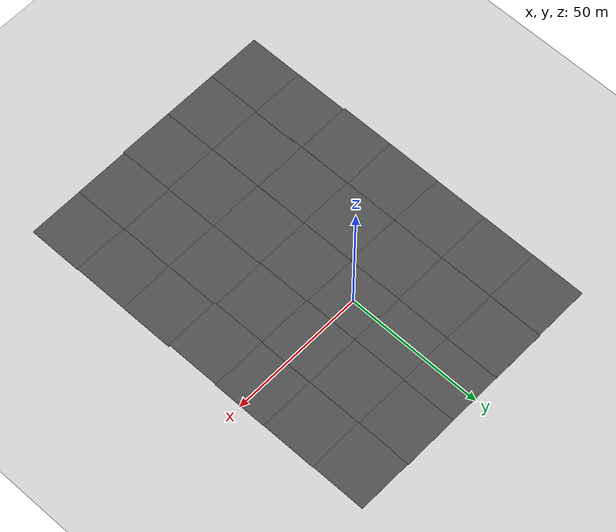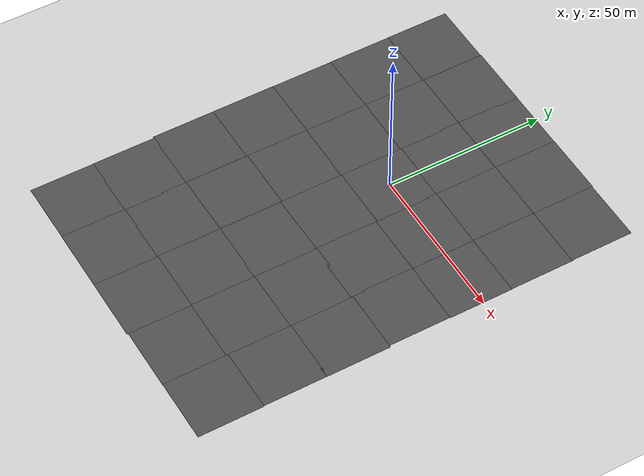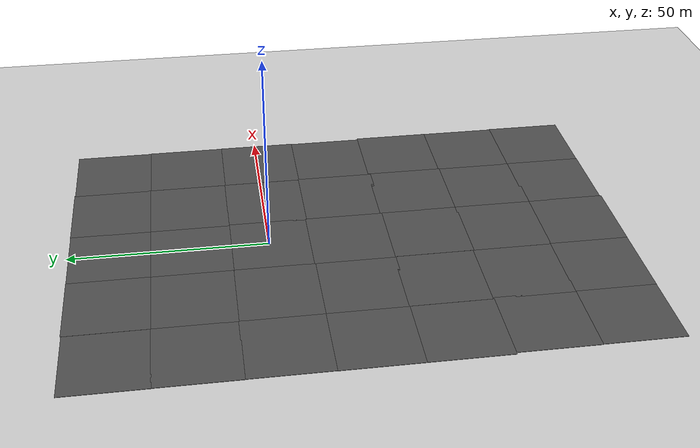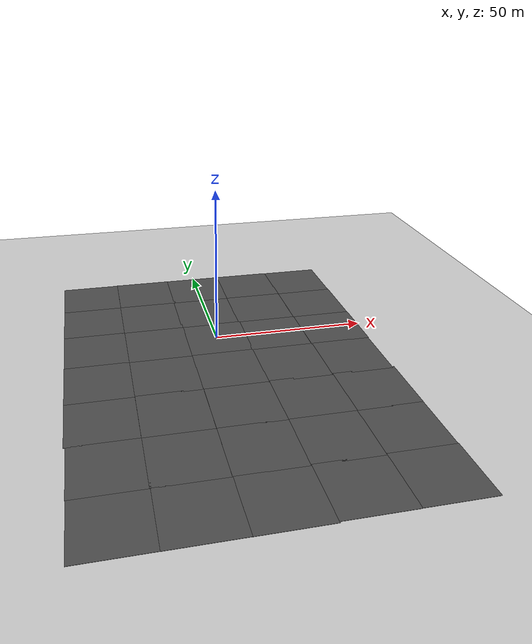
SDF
<sdf version="1.6">
 <world name="default">
  <light name="sun" type="directional">
   <pose>0 0 10 0 -0 0</pose>
   <diffuse>0.8 0.8 0.8 1</diffuse>
   <specular>0.1 0.1 0.1 1</specular>
   <attenuation>
    <range>1000</range>
    <constant>0.9</constant>
    <linear>0.01</linear>
    <quadratic>0.001</quadratic>
   </attenuation>
   <direction>-0.5 0.5 -1</direction>
  </light>
  <model name="ground_plane">
   <static>1</static>
   <link name="link">
    <collision name="collision">
     <geometry><plane><normal>0 0 1</normal><size>100 100</size></plane></geometry>
     <surface><friction><ode><mu>100</mu><mu2>50</mu2></ode></friction></surface>
    </collision>
    <visual name="visual">
     <cast_shadows>0</cast_shadows>
     <geometry><plane><normal>0 0 1</normal><size>100 100</size></plane></geometry>
     <material>
      <script><uri>file://media/materials/scripts/gazebo.material</uri><name>Gazebo/Grey</name></script>
     </material>
    </visual>
   </link>
  </model>
  <gravity>0 0 -9.8</gravity>
  <magnetic_field>6e-06 2.3e-05 -4.2e-05</magnetic_field>
  <atmosphere type="adiabatic"/>
  <physics name="default_physics" default="0" type="ode">
   <max_step_size>0.001</max_step_size>
   <real_time_factor>1</real_time_factor>
   <real_time_update_rate>1000</real_time_update_rate>
  </physics>
  <scene><ambient>0.4 0.4 0.4 1</ambient><background>0.7 0.7 0.7 1</background><shadows>1</shadows></scene>
  <spherical_coordinates>
   <surface_model>EARTH_WGS84</surface_model>
   <latitude_deg>0</latitude_deg>
   <longitude_deg>0</longitude_deg>
   <elevation>0</elevation>
   <heading_deg>0</heading_deg>
  </spherical_coordinates>
  <audio><device>default</device></audio>
  <model name="asphalt_plane_clone_1_clone">
   <static>1</static>
   <link name="link">
    <collision name="collision"><geometry><box><size>20 20 0.1</size></box></geometry></collision>
    <visual name="visual">
     <cast_shadows>0</cast_shadows>
     <geometry><box><size>20 20 0.1</size></box></geometry>
     <material>
      <script>
       <uri>model://asphalt_plane/materials/scripts</uri>
       <uri>model://asphalt_plane/materials/textures</uri>
       <name>vrc/asphalt</name>
      </script>
     </material>
    </visual>
   </link>
   <pose>-39.9394 -39.8847 0 0 -0 0</pose>
  </model>
  <model name="asphalt_plane_clone_1_clone_0">
   <static>1</static>
   <link name="link">
    <collision name="collision"><geometry><box><size>20 20 0.1</size></box></geometry></collision>
    <visual name="visual">
     <cast_shadows>0</cast_shadows>
     <geometry><box><size>20 20 0.1</size></box></geometry>
     <material>
      <script>
       <uri>model://asphalt_plane/materials/scripts</uri>
       <uri>model://asphalt_plane/materials/textures</uri>
       <name>vrc/asphalt</name>
      </script>
     </material>
    </visual>
   </link>
   <pose>-19.9191 -39.7347 0 0 -0 0</pose>
  </model>
  <model name="asphalt_plane_clone_clone_clone">
   <static>1</static>
   <link name="link">
    <collision name="collision"><geometry><box><size>20 20 0.1</size></box></geometry></collision>
    <visual name="visual">
     <cast_shadows>0</cast_shadows>
     <geometry><box><size>20 20 0.1</size></box></geometry>
     <material>
      <script>
       <uri>model://asphalt_plane/materials/scripts</uri>
       <uri>model://asphalt_plane/materials/textures</uri>
       <name>vrc/asphalt</name>
      </script>
     </material>
    </visual>
   </link>
   <pose>0.106058 -39.9375 0 0 -0 0</pose>
  </model>
  <model name="asphalt_plane_clone_clone_clone_0">
   <static>1</static>
   <link name="link">
    <collision name="collision"><geometry><box><size>20 20 0.1</size></box></geometry></collision>
    <visual name="visual">
     <cast_shadows>0</cast_shadows>
     <geometry><box><size>20 20 0.1</size></box></geometry>
     <material>
      <script>
       <uri>model://asphalt_plane/materials/scripts</uri>
       <uri>model://asphalt_plane/materials/textures</uri>
       <name>vrc/asphalt</name>
      </script>
     </material>
    </visual>
   </link>
   <pose>20.0021 -39.6869 0 0 -0 0</pose>
  </model>
  <model name="asphalt_plane_clone_clone_clone_1">
   <static>1</static>
   <link name="link">
    <collision name="collision"><geometry><box><size>20 20 0.1</size></box></geometry></collision>
    <visual name="visual">
     <cast_shadows>0</cast_shadows>
     <geometry><box><size>20 20 0.1</size></box></geometry>
     <material>
      <script>
       <uri>model://asphalt_plane/materials/scripts</uri>
       <uri>model://asphalt_plane/materials/textures</uri>
       <name>vrc/asphalt</name>
      </script>
     </material>
    </visual>
   </link>
   <pose>39.9224 -39.7463 0 0 -0 0</pose>
  </model>
  <model name="asphalt_plane_clone_clone_clone_2">
   <static>1</static>
   <link name="link">
    <collision name="collision"><geometry><box><size>20 20 0.1</size></box></geometry></collision>
    <visual name="visual">
     <cast_shadows>0</cast_shadows>
     <geometry><box><size>20 20 0.1</size></box></geometry>
     <material>
      <script>
       <uri>model://asphalt_plane/materials/scripts</uri>
       <uri>model://asphalt_plane/materials/textures</uri>
       <name>vrc/asphalt</name>
      </script>
     </material>
    </visual>
   </link>
   <pose>-39.9524 -20.126 0 0 -0 0</pose>
  </model>
  <model name="asphalt_plane_clone_clone_clone_3">
   <static>1</static>
   <link name="link">
    <collision name="collision"><geometry><box><size>20 20 0.1</size></box></geometry></collision>
    <visual name="visual">
     <cast_shadows>0</cast_shadows>
     <geometry><box><size>20 20 0.1</size></box></geometry>
     <material>
      <script>
       <uri>model://asphalt_plane/materials/scripts</uri>
       <uri>model://asphalt_plane/materials/textures</uri>
       <name>vrc/asphalt</name>
      </script>
     </material>
    </visual>
   </link>
   <pose>-19.9813 -20.2312 0 0 -0 0</pose>
  </model>
  <model name="asphalt_plane_clone_clone_clone_4">
   <static>1</static>
   <link name="link">
    <collision name="collision"><geometry><box><size>20 20 0.1</size></box></geometry></collision>
    <visual name="visual">
     <cast_shadows>0</cast_shadows>
     <geometry><box><size>20 20 0.1</size></box></geometry>
     <material>
      <script>
       <uri>model://asphalt_plane/materials/scripts</uri>
       <uri>model://asphalt_plane/materials/textures</uri>
       <name>vrc/asphalt</name>
      </script>
     </material>
    </visual>
   </link>
   <pose>-0.091386 -0.137303 0 0 -0 0</pose>
  </model>
  <model name="asphalt_plane_clone_clone_clone_5_clone">
   <static>1</static>
   <link name="link">
    <collision name="collision"><geometry><box><size>20 20 0.1</size></box></geometry></collision>
    <visual name="visual">
     <cast_shadows>0</cast_shadows>
     <geometry><box><size>20 20 0.1</size></box></geometry>
     <material>
      <script>
       <uri>model://asphalt_plane/materials/scripts</uri>
       <uri>model://asphalt_plane/materials/textures</uri>
       <name>vrc/asphalt</name>
      </script>
     </material>
    </visual>
   </link>
   <pose>39.357 -20.3765 0 0 -0 0</pose>
  </model>
  <model name="asphalt_plane_clone_clone_clone_5_clone_0">
   <static>1</static>
   <link name="link">
    <collision name="collision"><geometry><box><size>20 20 0.1</size></box></geometry></collision>
    <visual name="visual">
     <cast_shadows>0</cast_shadows>
     <geometry><box><size>20 20 0.1</size></box></geometry>
     <material>
      <script>
       <uri>model://asphalt_plane/materials/scripts</uri>
       <uri>model://asphalt_plane/materials/textures</uri>
       <name>vrc/asphalt</name>
      </script>
     </material>
    </visual>
   </link>
   <pose>-39.8976 -0.322434 0 0 -0 0</pose>
  </model>
  <model name="asphalt_plane_clone_clone_clone_5_clone_1">
   <static>1</static>
   <link name="link">
    <collision name="collision"><geometry><box><size>20 20 0.1</size></box></geometry></collision>
    <visual name="visual">
     <cast_shadows>0</cast_shadows>
     <geometry><box><size>20 20 0.1</size></box></geometry>
     <material>
      <script>
       <uri>model://asphalt_plane/materials/scripts</uri>
       <uri>model://asphalt_plane/materials/textures</uri>
       <name>vrc/asphalt</name>
      </script>
     </material>
    </visual>
   </link>
   <pose>-19.9802 -0.374372 0 0 -0 0</pose>
  </model>
  <model name="asphalt_plane_clone_clone_clone_5_clone_2">
   <static>1</static>
   <link name="link">
    <collision name="collision"><geometry><box><size>20 20 0.1</size></box></geometry></collision>
    <visual name="visual">
     <cast_shadows>0</cast_shadows>
     <geometry><box><size>20 20 0.1</size></box></geometry>
     <material>
      <script>
       <uri>model://asphalt_plane/materials/scripts</uri>
       <uri>model://asphalt_plane/materials/textures</uri>
       <name>vrc/asphalt</name>
      </script>
     </material>
    </visual>
   </link>
   <pose>-0.077731 -20.1313 0 0 -0 0</pose>
  </model>
  <model name="asphalt_plane_clone_clone_clone_5_clone_3">
   <static>1</static>
   <link name="link">
    <collision name="collision"><geometry><box><size>20 20 0.1</size></box></geometry></collision>
    <visual name="visual">
     <cast_shadows>0</cast_shadows>
     <geometry><box><size>20 20 0.1</size></box></geometry>
     <material>
      <script>
       <uri>model://asphalt_plane/materials/scripts</uri>
       <uri>model://asphalt_plane/materials/textures</uri>
       <name>vrc/asphalt</name>
      </script>
     </material>
    </visual>
   </link>
   <pose>19.5299 -0.424865 0 0 -0 0</pose>
  </model>
  <model name="asphalt_plane_clone_clone_clone_5_clone_4">
   <static>1</static>
   <link name="link">
    <collision name="collision"><geometry><box><size>20 20 0.1</size></box></geometry></collision>
    <visual name="visual">
     <cast_shadows>0</cast_shadows>
     <geometry><box><size>20 20 0.1</size></box></geometry>
     <material>
      <script>
       <uri>model://asphalt_plane/materials/scripts</uri>
       <uri>model://asphalt_plane/materials/textures</uri>
       <name>vrc/asphalt</name>
      </script>
     </material>
    </visual>
   </link>
   <pose>39.5399 -0.560744 0 0 -0 0</pose>
  </model>
  <model name="asphalt_plane_clone_clone_clone_5_clone_5">
   <static>1</static>
   <link name="link">
    <collision name="collision"><geometry><box><size>20 20 0.1</size></box></geometry></collision>
    <visual name="visual">
     <cast_shadows>0</cast_shadows>
     <geometry><box><size>20 20 0.1</size></box></geometry>
     <material>
      <script>
       <uri>model://asphalt_plane/materials/scripts</uri>
       <uri>model://asphalt_plane/materials/textures</uri>
       <name>vrc/asphalt</name>
      </script>
     </material>
    </visual>
   </link>
   <pose>-39.9592 19.4755 0 0 -0 0</pose>
  </model>
  <model name="asphalt_plane_clone_clone_clone_5_clone_6">
   <static>1</static>
   <link name="link">
    <collision name="collision"><geometry><box><size>20 20 0.1</size></box></geometry></collision>
    <visual name="visual">
     <cast_shadows>0</cast_shadows>
     <geometry><box><size>20 20 0.1</size></box></geometry>
     <material>
      <script>
       <uri>model://asphalt_plane/materials/scripts</uri>
       <uri>model://asphalt_plane/materials/textures</uri>
       <name>vrc/asphalt</name>
      </script>
     </material>
    </visual>
   </link>
   <pose>-20.0541 19.5351 0 0 -0 0</pose>
  </model>
  <model name="asphalt_plane_clone_clone_clone_5_clone_7">
   <static>1</static>
   <link name="link">
    <collision name="collision"><geometry><box><size>20 20 0.1</size></box></geometry></collision>
    <visual name="visual">
     <cast_shadows>0</cast_shadows>
     <geometry><box><size>20 20 0.1</size></box></geometry>
     <material>
      <script>
       <uri>model://asphalt_plane/materials/scripts</uri>
       <uri>model://asphalt_plane/materials/textures</uri>
       <name>vrc/asphalt</name>
      </script>
     </material>
    </visual>
   </link>
   <pose>-0.472835 19.4434 0 0 -0 0</pose>
  </model>
  <model name="asphalt_plane_clone_clone_clone_5_clone_8">
   <static>1</static>
   <link name="link">
    <collision name="collision"><geometry><box><size>20 20 0.1</size></box></geometry></collision>
    <visual name="visual">
     <cast_shadows>0</cast_shadows>
     <geometry><box><size>20 20 0.1</size></box></geometry>
     <material>
      <script>
       <uri>model://asphalt_plane/materials/scripts</uri>
       <uri>model://asphalt_plane/materials/textures</uri>
       <name>vrc/asphalt</name>
      </script>
     </material>
    </visual>
   </link>
   <pose>19.4388 19.4963 0 0 -0 0</pose>
  </model>
  <model name="asphalt_plane_clone_clone_clone_5_clone_9">
   <static>1</static>
   <link name="link">
    <collision name="collision"><geometry><box><size>20 20 0.1</size></box></geometry></collision>
    <visual name="visual">
     <cast_shadows>0</cast_shadows>
     <geometry><box><size>20 20 0.1</size></box></geometry>
     <material>
      <script>
       <uri>model://asphalt_plane/materials/scripts</uri>
       <uri>model://asphalt_plane/materials/textures</uri>
       <name>vrc/asphalt</name>
      </script>
     </material>
    </visual>
   </link>
   <pose>39.4473 19.4191 0 0 -0 0</pose>
  </model>
  <model name="asphalt_plane_clone_clone_clone_5_clone_10">
   <static>1</static>
   <link name="link">
    <collision name="collision"><geometry><box><size>20 20 0.1</size></box></geometry></collision>
    <visual name="visual">
     <cast_shadows>0</cast_shadows>
     <geometry><box><size>20 20 0.1</size></box></geometry>
     <material>
      <script>
       <uri>model://asphalt_plane/materials/scripts</uri>
       <uri>model://asphalt_plane/materials/textures</uri>
       <name>vrc/asphalt</name>
      </script>
     </material>
    </visual>
   </link>
   <pose>-40.0128 39.2685 0 0 -0 0</pose>
  </model>
  <model name="asphalt_plane_clone_clone_clone_5_clone_11">
   <static>1</static>
   <link name="link">
    <collision name="collision"><geometry><box><size>20 20 0.1</size></box></geometry></collision>
    <visual name="visual">
     <cast_shadows>0</cast_shadows>
     <geometry><box><size>20 20 0.1</size></box></geometry>
     <material>
      <script>
       <uri>model://asphalt_plane/materials/scripts</uri>
       <uri>model://asphalt_plane/materials/textures</uri>
       <name>vrc/asphalt</name>
      </script>
     </material>
    </visual>
   </link>
   <pose>-19.9859 39.4451 0 0 -0 0</pose>
  </model>
  <model name="asphalt_plane_clone_clone_clone_5_clone_12">
   <static>1</static>
   <link name="link">
    <collision name="collision"><geometry><box><size>20 20 0.1</size></box></geometry></collision>
    <visual name="visual">
     <cast_shadows>0</cast_shadows>
     <geometry><box><size>20 20 0.1</size></box></geometry>
     <material>
      <script>
       <uri>model://asphalt_plane/materials/scripts</uri>
       <uri>model://asphalt_plane/materials/textures</uri>
       <name>vrc/asphalt</name>
      </script>
     </material>
    </visual>
   </link>
   <pose>-0.425541 39.3913 0 0 -0 0</pose>
  </model>
  <model name="asphalt_plane_clone_clone_clone_5_clone_13">
   <static>1</static>
   <link name="link">
    <collision name="collision"><geometry><box><size>20 20 0.1</size></box></geometry></collision>
    <visual name="visual">
     <cast_shadows>0</cast_shadows>
     <geometry><box><size>20 20 0.1</size></box></geometry>
     <material>
      <script>
       <uri>model://asphalt_plane/materials/scripts</uri>
       <uri>model://asphalt_plane/materials/textures</uri>
       <name>vrc/asphalt</name>
      </script>
     </material>
    </visual>
   </link>
   <pose>19.4908 39.442 0 0 -0 0</pose>
  </model>
  <model name="asphalt_plane_clone_clone_clone_5_clone_14">
   <static>1</static>
   <link name="link">
    <collision name="collision"><geometry><box><size>20 20 0.1</size></box></geometry></collision>
    <visual name="visual">
     <cast_shadows>0</cast_shadows>
     <geometry><box><size>20 20 0.1</size></box></geometry>
     <material>
      <script>
       <uri>model://asphalt_plane/materials/scripts</uri>
       <uri>model://asphalt_plane/materials/textures</uri>
       <name>vrc/asphalt</name>
      </script>
     </material>
    </visual>
   </link>
   <pose>39.2842 39.2531 0 0 -0 0</pose>
  </model>
  <model name="asphalt_plane_clone_clone_clone_0_clone">
   <static>1</static>
   <link name="link">
    <collision name="collision"><geometry><box><size>20 20 0.1</size></box></geometry></collision>
    <visual name="visual">
     <cast_shadows>0</cast_shadows>
     <geometry><box><size>20 20 0.1</size></box></geometry>
     <material>
      <script>
       <uri>model://asphalt_plane/materials/scripts</uri>
       <uri>model://asphalt_plane/materials/textures</uri>
       <name>vrc/asphalt</name>
      </script>
     </material>
    </visual>
   </link>
   <pose>19.7603 -20.4151 0 0 -0 0</pose>
  </model>
  <model name="asphalt_plane_clone_clone_clone_1_clone">
   <static>1</static>
   <link name="link">
    <collision name="collision"><geometry><box><size>20 20 0.1</size></box></geometry></collision>
    <visual name="visual">
     <cast_shadows>0</cast_shadows>
     <geometry><box><size>20 20 0.1</size></box></geometry>
     <material>
      <script>
       <uri>model://asphalt_plane/materials/scripts</uri>
       <uri>model://asphalt_plane/materials/textures</uri>
       <name>vrc/asphalt</name>
      </script>
     </material>
    </visual>
   </link>
   <pose>39.8745 -59.4518 0 0 -0 0</pose>
  </model>
  <model name="asphalt_plane_clone_clone_clone_1_clone_0">
   <static>1</static>
   <link name="link">
    <collision name="collision"><geometry><box><size>20 20 0.1</size></box></geometry></collision>
    <visual name="visual">
     <cast_shadows>0</cast_shadows>
     <geometry><box><size>20 20 0.1</size></box></geometry>
     <material>
      <script>
       <uri>model://asphalt_plane/materials/scripts</uri>
       <uri>model://asphalt_plane/materials/textures</uri>
       <name>vrc/asphalt</name>
      </script>
     </material>
    </visual>
   </link>
   <pose>20.02 -59.6809 0 0 -0 0</pose>
  </model>
  <model name="asphalt_plane_clone_clone_clone_1_clone_1">
   <static>1</static>
   <link name="link">
    <collision name="collision"><geometry><box><size>20 20 0.1</size></box></geometry></collision>
    <visual name="visual">
     <cast_shadows>0</cast_shadows>
     <geometry><box><size>20 20 0.1</size></box></geometry>
     <material>
      <script>
       <uri>model://asphalt_plane/materials/scripts</uri>
       <uri>model://asphalt_plane/materials/textures</uri>
       <name>vrc/asphalt</name>
      </script>
     </material>
    </visual>
   </link>
   <pose>0.120793 -59.6302 0 0 -0 0</pose>
  </model>
  <model name="asphalt_plane_clone_clone_clone_1_clone_2">
   <static>1</static>
   <link name="link">
    <collision name="collision"><geometry><box><size>20 20 0.1</size></box></geometry></collision>
    <visual name="visual">
     <cast_shadows>0</cast_shadows>
     <geometry><box><size>20 20 0.1</size></box></geometry>
     <material>
      <script>
       <uri>model://asphalt_plane/materials/scripts</uri>
       <uri>model://asphalt_plane/materials/textures</uri>
       <name>vrc/asphalt</name>
      </script>
     </material>
    </visual>
   </link>
   <pose>-19.8842 -59.6545 0 0 -0 0</pose>
  </model>
  <model name="asphalt_plane_clone_clone_clone_1_clone_3">
   <static>1</static>
   <link name="link">
    <collision name="collision"><geometry><box><size>20 20 0.1</size></box></geometry></collision>
    <visual name="visual">
     <cast_shadows>0</cast_shadows>
     <geometry><box><size>20 20 0.1</size></box></geometry>
     <material>
      <script>
       <uri>model://asphalt_plane/materials/scripts</uri>
       <uri>model://asphalt_plane/materials/textures</uri>
       <name>vrc/asphalt</name>
      </script>
     </material>
    </visual>
   </link>
   <pose>-39.4297 -59.6497 0 0 -0 0</pose>
  </model>
  <model name="asphalt_plane_clone_clone_clone_1_clone_4">
   <static>1</static>
   <link name="link">
    <collision name="collision"><geometry><box><size>20 20 0.1</size></box></geometry></collision>
    <visual name="visual">
     <cast_shadows>0</cast_shadows>
     <geometry><box><size>20 20 0.1</size></box></geometry>
     <material>
      <script>
       <uri>model://asphalt_plane/materials/scripts</uri>
       <uri>model://asphalt_plane/materials/textures</uri>
       <name>vrc/asphalt</name>
      </script>
     </material>
    </visual>
   </link>
   <pose>40.066 -79.0612 0 0 -0 0</pose>
  </model>
  <model name="asphalt_plane_clone_clone_clone_1_clone_5">
   <static>1</static>
   <link name="link">
    <collision name="collision"><geometry><box><size>20 20 0.1</size></box></geometry></collision>
    <visual name="visual">
     <cast_shadows>0</cast_shadows>
     <geometry><box><size>20 20 0.1</size></box></geometry>
     <material>
      <script>
       <uri>model://asphalt_plane/materials/scripts</uri>
       <uri>model://asphalt_plane/materials/textures</uri>
       <name>vrc/asphalt</name>
      </script>
     </material>
    </visual>
   </link>
   <pose>20.106 -79.1197 0 0 -0 0</pose>
  </model>
  <model name="asphalt_plane_clone_clone_clone_1_clone_6">
   <static>1</static>
   <link name="link">
    <collision name="collision"><geometry><box><size>20 20 0.1</size></box></geometry></collision>
    <visual name="visual">
     <cast_shadows>0</cast_shadows>
     <geometry><box><size>20 20 0.1</size></box></geometry>
     <material>
      <script>
       <uri>model://asphalt_plane/materials/scripts</uri>
       <uri>model://asphalt_plane/materials/textures</uri>
       <name>vrc/asphalt</name>
      </script>
     </material>
    </visual>
   </link>
   <pose>0.249898 -79.4886 0 0 -0 0</pose>
  </model>
  <model name="asphalt_plane_clone_clone_clone_1_clone_7">
   <static>1</static>
   <link name="link">
    <collision name="collision"><geometry><box><size>20 20 0.1</size></box></geometry></collision>
    <visual name="visual">
     <cast_shadows>0</cast_shadows>
     <geometry><box><size>20 20 0.1</size></box></geometry>
     <material>
      <script>
       <uri>model://asphalt_plane/materials/scripts</uri>
       <uri>model://asphalt_plane/materials/textures</uri>
       <name>vrc/asphalt</name>
      </script>
     </material>
    </visual>
   </link>
   <pose>-19.6905 -79.4496 0 0 -0 0</pose>
  </model>
  <model name="asphalt_plane_clone_clone_clone_1_clone_8">
   <static>1</static>
   <link name="link">
    <collision name="collision"><geometry><box><size>20 20 0.1</size></box></geometry></collision>
    <visual name="visual">
     <cast_shadows>0</cast_shadows>
     <geometry><box><size>20 20 0.1</size></box></geometry>
     <material>
      <script>
       <uri>model://asphalt_plane/materials/scripts</uri>
       <uri>model://asphalt_plane/materials/textures</uri>
       <name>vrc/asphalt</name>
      </script>
     </material>
    </visual>
   </link>
   <pose>-39.3458 -79.4106 0 0 -0 0</pose>
  </model>
 </world>
</sdf>
